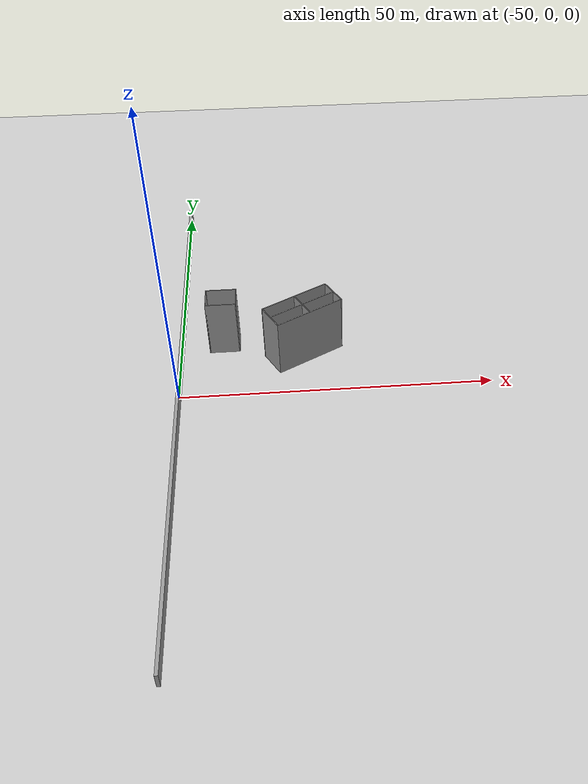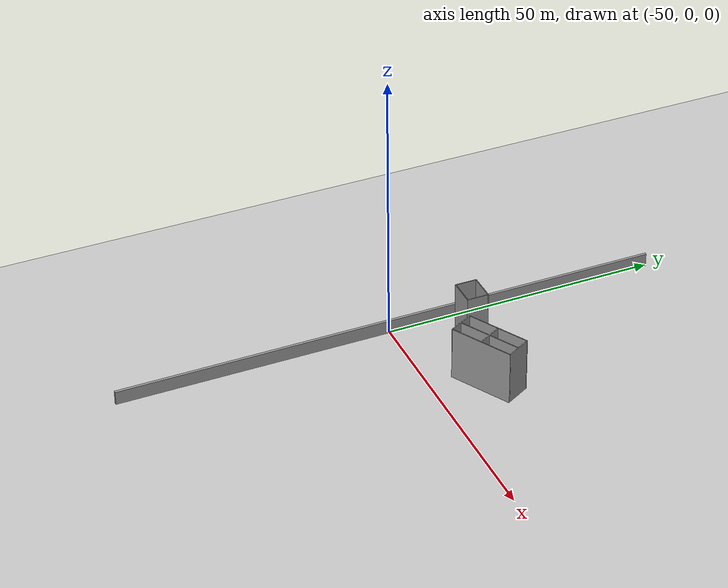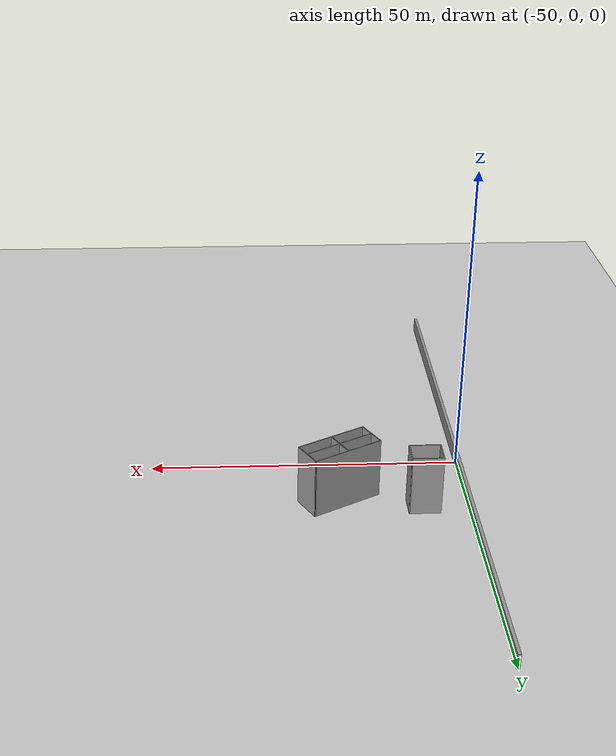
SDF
<sdf version="1.7">
 <world name="default">
  <model name="ground_plane">
   <static>1</static>
   <link name="link">
    <collision name="collision">
     <geometry><plane><normal>0 0 1</normal><size>100 100</size></plane></geometry>
     <surface><friction><ode><mu>100</mu><mu2>50</mu2></ode></friction></surface>
    </collision>
    <visual name="visual">
     <cast_shadows>0</cast_shadows>
     <geometry><plane><normal>0 0 1</normal><size>100 100</size></plane></geometry>
     <material>
      <script><uri>file://media/materials/scripts/gazebo.material</uri><name>Gazebo/Grey</name></script>
     </material>
    </visual>
   </link>
  </model>
  <model name="building1_clone_0_clone_5">
   <link name="Wall_12">
    <pose>-1.19 -3.2645 0 0 -0 0</pose>
    <inertial>
     <mass>1</mass>
     <inertia><ixx>1</ixx><ixy>0</ixy><ixz>0</ixz><iyy>1</iyy><iyz>0</iyz><izz>1</izz></inertia>
    </inertial>
    <visual name="Wall_12_Visual">
     <pose>0 0 5 0 -0 0</pose>
     <geometry><box><size>5 0.15 10</size></box></geometry>
     <material>
      <script><uri>file://media/materials/scripts/gazebo.material</uri><name>Gazebo/Grey</name></script>
      <ambient>0.5 0.5 0.5 1</ambient>
      <shader type="pixel"><normal_map>__default__</normal_map></shader>
      <diffuse>0.5 0.5 0.5 1</diffuse>
      <specular>0.5 0.5 0.5 1</specular>
      <emissive>0 0 0 1</emissive>
     </material>
     <meta><layer>0</layer></meta>
    </visual>
    <collision name="Wall_12_Collision">
     <pose>0 0 5 0 -0 0</pose>
     <geometry><box><size>5 0.15 10</size></box></geometry>
     <surface>
      <friction>
       <ode><mu>1</mu><mu2>1</mu2><fdir1>0 0 0</fdir1><slip1>0</slip1><slip2>0</slip2></ode>
       <torsional>
        <coefficient>1</coefficient>
        <patch_radius>0</patch_radius>
        <surface_radius>0</surface_radius>
        <use_patch_radius>1</use_patch_radius>
        <ode><slip>0</slip></ode>
       </torsional>
      </friction>
      <bounce><restitution_coefficient>0</restitution_coefficient><threshold>1e+06</threshold></bounce>
      <contact>
       <collide_without_contact>0</collide_without_contact>
       <collide_without_contact_bitmask>1</collide_without_contact_bitmask>
       <collide_bitmask>1</collide_bitmask>
       <ode>
        <soft_cfm>0</soft_cfm>
        <soft_erp>0.2</soft_erp>
        <kp>1e+13</kp>
        <kd>1</kd>
        <max_vel>0.01</max_vel>
        <min_depth>0</min_depth>
       </ode>
       <bullet>
        <split_impulse>1</split_impulse>
        <split_impulse_penetration_threshold>-0.01</split_impulse_penetration_threshold>
        <soft_cfm>0</soft_cfm>
        <soft_erp>0.2</soft_erp>
        <kp>1e+13</kp>
        <kd>1</kd>
       </bullet>
      </contact>
     </surface>
    </collision>
   </link>
   <link name="Wall_13">
    <pose>1.235 -1.3395 0 0 -0 1.5708</pose>
    <inertial>
     <mass>1</mass>
     <inertia><ixx>1</ixx><ixy>0</ixy><ixz>0</ixz><iyy>1</iyy><iyz>0</iyz><izz>1</izz></inertia>
    </inertial>
    <visual name="Wall_13_Visual">
     <pose>0 0 5 0 -0 0</pose>
     <geometry><box><size>4 0.15 10</size></box></geometry>
     <material>
      <script><uri>file://media/materials/scripts/gazebo.material</uri><name>Gazebo/Grey</name></script>
      <ambient>0.5 0.5 0.5 1</ambient>
      <shader type="pixel"><normal_map>__default__</normal_map></shader>
      <diffuse>0.5 0.5 0.5 1</diffuse>
      <specular>0.5 0.5 0.5 1</specular>
      <emissive>0 0 0 1</emissive>
     </material>
     <meta><layer>0</layer></meta>
    </visual>
    <collision name="Wall_13_Collision">
     <pose>0 0 5 0 -0 0</pose>
     <geometry><box><size>4 0.15 10</size></box></geometry>
     <surface>
      <friction>
       <ode><mu>1</mu><mu2>1</mu2><fdir1>0 0 0</fdir1><slip1>0</slip1><slip2>0</slip2></ode>
       <torsional>
        <coefficient>1</coefficient>
        <patch_radius>0</patch_radius>
        <surface_radius>0</surface_radius>
        <use_patch_radius>1</use_patch_radius>
        <ode><slip>0</slip></ode>
       </torsional>
      </friction>
      <bounce><restitution_coefficient>0</restitution_coefficient><threshold>1e+06</threshold></bounce>
      <contact>
       <collide_without_contact>0</collide_without_contact>
       <collide_without_contact_bitmask>1</collide_without_contact_bitmask>
       <collide_bitmask>1</collide_bitmask>
       <ode>
        <soft_cfm>0</soft_cfm>
        <soft_erp>0.2</soft_erp>
        <kp>1e+13</kp>
        <kd>1</kd>
        <max_vel>0.01</max_vel>
        <min_depth>0</min_depth>
       </ode>
       <bullet>
        <split_impulse>1</split_impulse>
        <split_impulse_penetration_threshold>-0.01</split_impulse_penetration_threshold>
        <soft_cfm>0</soft_cfm>
        <soft_erp>0.2</soft_erp>
        <kp>1e+13</kp>
        <kd>1</kd>
       </bullet>
      </contact>
     </surface>
    </collision>
   </link>
   <link name="Wall_15">
    <pose>-1.19 0.5855 0 0 -0 3.14159</pose>
    <inertial>
     <mass>1</mass>
     <inertia><ixx>1</ixx><ixy>0</ixy><ixz>0</ixz><iyy>1</iyy><iyz>0</iyz><izz>1</izz></inertia>
    </inertial>
    <visual name="Wall_15_Visual">
     <pose>0 0 5 0 -0 0</pose>
     <geometry><box><size>5 0.15 10</size></box></geometry>
     <material>
      <script><uri>file://media/materials/scripts/gazebo.material</uri><name>Gazebo/Grey</name></script>
      <ambient>0.5 0.5 0.5 1</ambient>
      <shader type="pixel"><normal_map>__default__</normal_map></shader>
      <diffuse>0.5 0.5 0.5 1</diffuse>
      <specular>0.5 0.5 0.5 1</specular>
      <emissive>0 0 0 1</emissive>
     </material>
     <meta><layer>0</layer></meta>
    </visual>
    <collision name="Wall_15_Collision">
     <pose>0 0 5 0 -0 0</pose>
     <geometry><box><size>5 0.15 10</size></box></geometry>
     <surface>
      <friction>
       <ode><mu>1</mu><mu2>1</mu2><fdir1>0 0 0</fdir1><slip1>0</slip1><slip2>0</slip2></ode>
       <torsional>
        <coefficient>1</coefficient>
        <patch_radius>0</patch_radius>
        <surface_radius>0</surface_radius>
        <use_patch_radius>1</use_patch_radius>
        <ode><slip>0</slip></ode>
       </torsional>
      </friction>
      <bounce><restitution_coefficient>0</restitution_coefficient><threshold>1e+06</threshold></bounce>
      <contact>
       <collide_without_contact>0</collide_without_contact>
       <collide_without_contact_bitmask>1</collide_without_contact_bitmask>
       <collide_bitmask>1</collide_bitmask>
       <ode>
        <soft_cfm>0</soft_cfm>
        <soft_erp>0.2</soft_erp>
        <kp>1e+13</kp>
        <kd>1</kd>
        <max_vel>0.01</max_vel>
        <min_depth>0</min_depth>
       </ode>
       <bullet>
        <split_impulse>1</split_impulse>
        <split_impulse_penetration_threshold>-0.01</split_impulse_penetration_threshold>
        <soft_cfm>0</soft_cfm>
        <soft_erp>0.2</soft_erp>
        <kp>1e+13</kp>
        <kd>1</kd>
       </bullet>
      </contact>
     </surface>
    </collision>
   </link>
   <link name="Wall_16">
    <pose>-3.615 -1.3395 0 0 0 -1.5708</pose>
    <inertial>
     <mass>1</mass>
     <inertia><ixx>1</ixx><ixy>0</ixy><ixz>0</ixz><iyy>1</iyy><iyz>0</iyz><izz>1</izz></inertia>
    </inertial>
    <visual name="Wall_16_Visual">
     <pose>0 0 5 0 -0 0</pose>
     <geometry><box><size>4 0.15 10</size></box></geometry>
     <material>
      <script><uri>file://media/materials/scripts/gazebo.material</uri><name>Gazebo/Grey</name></script>
      <ambient>0.5 0.5 0.5 1</ambient>
      <shader type="pixel"><normal_map>__default__</normal_map></shader>
      <diffuse>0.5 0.5 0.5 1</diffuse>
      <specular>0.5 0.5 0.5 1</specular>
      <emissive>0 0 0 1</emissive>
     </material>
     <meta><layer>0</layer></meta>
    </visual>
    <collision name="Wall_16_Collision">
     <pose>0 0 5 0 -0 0</pose>
     <geometry><box><size>4 0.15 10</size></box></geometry>
     <surface>
      <friction>
       <ode><mu>1</mu><mu2>1</mu2><fdir1>0 0 0</fdir1><slip1>0</slip1><slip2>0</slip2></ode>
       <torsional>
        <coefficient>1</coefficient>
        <patch_radius>0</patch_radius>
        <surface_radius>0</surface_radius>
        <use_patch_radius>1</use_patch_radius>
        <ode><slip>0</slip></ode>
       </torsional>
      </friction>
      <bounce><restitution_coefficient>0</restitution_coefficient><threshold>1e+06</threshold></bounce>
      <contact>
       <collide_without_contact>0</collide_without_contact>
       <collide_without_contact_bitmask>1</collide_without_contact_bitmask>
       <collide_bitmask>1</collide_bitmask>
       <ode>
        <soft_cfm>0</soft_cfm>
        <soft_erp>0.2</soft_erp>
        <kp>1e+13</kp>
        <kd>1</kd>
        <max_vel>0.01</max_vel>
        <min_depth>0</min_depth>
       </ode>
       <bullet>
        <split_impulse>1</split_impulse>
        <split_impulse_penetration_threshold>-0.01</split_impulse_penetration_threshold>
        <soft_cfm>0</soft_cfm>
        <soft_erp>0.2</soft_erp>
        <kp>1e+13</kp>
        <kd>1</kd>
       </bullet>
      </contact>
     </surface>
    </collision>
   </link>
   <static>1</static>
   <pose>-41.7127 13.7218 0 0 -0 0</pose>
  </model>
  <model name="building5_clone_clone">
   <link name="Wall_64">
    <pose>-1e-06 -4.8275 0 0 -0 0</pose>
    <inertial>
     <mass>1</mass>
     <inertia><ixx>1</ixx><ixy>0</ixy><ixz>0</ixz><iyy>1</iyy><iyz>0</iyz><izz>1</izz></inertia>
    </inertial>
    <visual name="Wall_64_Visual">
     <pose>0 0 5 0 -0 0</pose>
     <geometry><box><size>12 0.15 10</size></box></geometry>
     <material>
      <script><uri>file://media/materials/scripts/gazebo.material</uri><name>Gazebo/Grey</name></script>
      <ambient>0.5 0.5 0.5 1</ambient>
      <shader type="pixel"><normal_map>__default__</normal_map></shader>
      <diffuse>0.5 0.5 0.5 1</diffuse>
      <specular>0.5 0.5 0.5 1</specular>
      <emissive>0 0 0 1</emissive>
     </material>
     <meta><layer>0</layer></meta>
    </visual>
    <collision name="Wall_64_Collision">
     <pose>0 0 5 0 -0 0</pose>
     <geometry><box><size>12 0.15 10</size></box></geometry>
     <surface>
      <friction>
       <ode><mu>1</mu><mu2>1</mu2><fdir1>0 0 0</fdir1><slip1>0</slip1><slip2>0</slip2></ode>
       <torsional>
        <coefficient>1</coefficient>
        <patch_radius>0</patch_radius>
        <surface_radius>0</surface_radius>
        <use_patch_radius>1</use_patch_radius>
        <ode><slip>0</slip></ode>
       </torsional>
      </friction>
      <bounce><restitution_coefficient>0</restitution_coefficient><threshold>1e+06</threshold></bounce>
      <contact>
       <collide_without_contact>0</collide_without_contact>
       <collide_without_contact_bitmask>1</collide_without_contact_bitmask>
       <collide_bitmask>1</collide_bitmask>
       <ode>
        <soft_cfm>0</soft_cfm>
        <soft_erp>0.2</soft_erp>
        <kp>1e+13</kp>
        <kd>1</kd>
        <max_vel>0.01</max_vel>
        <min_depth>0</min_depth>
       </ode>
       <bullet>
        <split_impulse>1</split_impulse>
        <split_impulse_penetration_threshold>-0.01</split_impulse_penetration_threshold>
        <soft_cfm>0</soft_cfm>
        <soft_erp>0.2</soft_erp>
        <kp>1e+13</kp>
        <kd>1</kd>
       </bullet>
      </contact>
     </surface>
    </collision>
   </link>
   <link name="Wall_65">
    <pose>5.925 -2.4025 0 0 -0 1.5708</pose>
    <inertial>
     <mass>1</mass>
     <inertia><ixx>1</ixx><ixy>0</ixy><ixz>0</ixz><iyy>1</iyy><iyz>0</iyz><izz>1</izz></inertia>
    </inertial>
    <visual name="Wall_65_Visual">
     <pose>0 0 5 0 -0 0</pose>
     <geometry><box><size>5 0.15 10</size></box></geometry>
     <material>
      <script><uri>file://media/materials/scripts/gazebo.material</uri><name>Gazebo/Grey</name></script>
      <ambient>0.5 0.5 0.5 1</ambient>
      <shader type="pixel"><normal_map>__default__</normal_map></shader>
      <diffuse>0.5 0.5 0.5 1</diffuse>
      <specular>0.5 0.5 0.5 1</specular>
      <emissive>0 0 0 1</emissive>
     </material>
     <meta><layer>0</layer></meta>
    </visual>
    <collision name="Wall_65_Collision">
     <pose>0 0 5 0 -0 0</pose>
     <geometry><box><size>5 0.15 10</size></box></geometry>
     <surface>
      <friction>
       <ode><mu>1</mu><mu2>1</mu2><fdir1>0 0 0</fdir1><slip1>0</slip1><slip2>0</slip2></ode>
       <torsional>
        <coefficient>1</coefficient>
        <patch_radius>0</patch_radius>
        <surface_radius>0</surface_radius>
        <use_patch_radius>1</use_patch_radius>
        <ode><slip>0</slip></ode>
       </torsional>
      </friction>
      <bounce><restitution_coefficient>0</restitution_coefficient><threshold>1e+06</threshold></bounce>
      <contact>
       <collide_without_contact>0</collide_without_contact>
       <collide_without_contact_bitmask>1</collide_without_contact_bitmask>
       <collide_bitmask>1</collide_bitmask>
       <ode>
        <soft_cfm>0</soft_cfm>
        <soft_erp>0.2</soft_erp>
        <kp>1e+13</kp>
        <kd>1</kd>
        <max_vel>0.01</max_vel>
        <min_depth>0</min_depth>
       </ode>
       <bullet>
        <split_impulse>1</split_impulse>
        <split_impulse_penetration_threshold>-0.01</split_impulse_penetration_threshold>
        <soft_cfm>0</soft_cfm>
        <soft_erp>0.2</soft_erp>
        <kp>1e+13</kp>
        <kd>1</kd>
       </bullet>
      </contact>
     </surface>
    </collision>
   </link>
   <link name="Wall_66">
    <pose>0 0.0225 0 0 -0 3.14159</pose>
    <inertial>
     <mass>1</mass>
     <inertia><ixx>1</ixx><ixy>0</ixy><ixz>0</ixz><iyy>1</iyy><iyz>0</iyz><izz>1</izz></inertia>
    </inertial>
    <visual name="Wall_66_Visual">
     <pose>0 0 5 0 -0 0</pose>
     <geometry><box><size>12 0.15 10</size></box></geometry>
     <material>
      <script><uri>file://media/materials/scripts/gazebo.material</uri><name>Gazebo/Grey</name></script>
      <ambient>0.5 0.5 0.5 1</ambient>
      <shader type="pixel"><normal_map>__default__</normal_map></shader>
      <diffuse>0.5 0.5 0.5 1</diffuse>
      <specular>0.5 0.5 0.5 1</specular>
      <emissive>0 0 0 1</emissive>
     </material>
     <meta><layer>0</layer></meta>
    </visual>
    <collision name="Wall_66_Collision">
     <pose>0 0 5 0 -0 0</pose>
     <geometry><box><size>12 0.15 10</size></box></geometry>
     <surface>
      <friction>
       <ode><mu>1</mu><mu2>1</mu2><fdir1>0 0 0</fdir1><slip1>0</slip1><slip2>0</slip2></ode>
       <torsional>
        <coefficient>1</coefficient>
        <patch_radius>0</patch_radius>
        <surface_radius>0</surface_radius>
        <use_patch_radius>1</use_patch_radius>
        <ode><slip>0</slip></ode>
       </torsional>
      </friction>
      <bounce><restitution_coefficient>0</restitution_coefficient><threshold>1e+06</threshold></bounce>
      <contact>
       <collide_without_contact>0</collide_without_contact>
       <collide_without_contact_bitmask>1</collide_without_contact_bitmask>
       <collide_bitmask>1</collide_bitmask>
       <ode>
        <soft_cfm>0</soft_cfm>
        <soft_erp>0.2</soft_erp>
        <kp>1e+13</kp>
        <kd>1</kd>
        <max_vel>0.01</max_vel>
        <min_depth>0</min_depth>
       </ode>
       <bullet>
        <split_impulse>1</split_impulse>
        <split_impulse_penetration_threshold>-0.01</split_impulse_penetration_threshold>
        <soft_cfm>0</soft_cfm>
        <soft_erp>0.2</soft_erp>
        <kp>1e+13</kp>
        <kd>1</kd>
       </bullet>
      </contact>
     </surface>
    </collision>
   </link>
   <link name="Wall_67">
    <pose>-5.925 -2.4025 0 0 0 -1.5708</pose>
    <inertial>
     <mass>1</mass>
     <inertia><ixx>1</ixx><ixy>0</ixy><ixz>0</ixz><iyy>1</iyy><iyz>0</iyz><izz>1</izz></inertia>
    </inertial>
    <visual name="Wall_67_Visual">
     <pose>0 0 5 0 -0 0</pose>
     <geometry><box><size>5 0.15 10</size></box></geometry>
     <material>
      <script><uri>file://media/materials/scripts/gazebo.material</uri><name>Gazebo/Grey</name></script>
      <ambient>0.5 0.5 0.5 1</ambient>
      <shader type="pixel"><normal_map>__default__</normal_map></shader>
      <diffuse>0.5 0.5 0.5 1</diffuse>
      <specular>0.5 0.5 0.5 1</specular>
      <emissive>0 0 0 1</emissive>
     </material>
     <meta><layer>0</layer></meta>
    </visual>
    <collision name="Wall_67_Collision">
     <pose>0 0 5 0 -0 0</pose>
     <geometry><box><size>5 0.15 10</size></box></geometry>
     <surface>
      <friction>
       <ode><mu>1</mu><mu2>1</mu2><fdir1>0 0 0</fdir1><slip1>0</slip1><slip2>0</slip2></ode>
       <torsional>
        <coefficient>1</coefficient>
        <patch_radius>0</patch_radius>
        <surface_radius>0</surface_radius>
        <use_patch_radius>1</use_patch_radius>
        <ode><slip>0</slip></ode>
       </torsional>
      </friction>
      <bounce><restitution_coefficient>0</restitution_coefficient><threshold>1e+06</threshold></bounce>
      <contact>
       <collide_without_contact>0</collide_without_contact>
       <collide_without_contact_bitmask>1</collide_without_contact_bitmask>
       <collide_bitmask>1</collide_bitmask>
       <ode>
        <soft_cfm>0</soft_cfm>
        <soft_erp>0.2</soft_erp>
        <kp>1e+13</kp>
        <kd>1</kd>
        <max_vel>0.01</max_vel>
        <min_depth>0</min_depth>
       </ode>
       <bullet>
        <split_impulse>1</split_impulse>
        <split_impulse_penetration_threshold>-0.01</split_impulse_penetration_threshold>
        <soft_cfm>0</soft_cfm>
        <soft_erp>0.2</soft_erp>
        <kp>1e+13</kp>
        <kd>1</kd>
       </bullet>
      </contact>
     </surface>
    </collision>
   </link>
   <link name="Wall_69">
    <pose>0 -2.3885 0 0 0 -1.5708</pose>
    <inertial>
     <mass>1</mass>
     <inertia><ixx>1</ixx><ixy>0</ixy><ixz>0</ixz><iyy>1</iyy><iyz>0</iyz><izz>1</izz></inertia>
    </inertial>
    <visual name="Wall_69_Visual">
     <pose>0 0 5 0 -0 0</pose>
     <geometry><box><size>4.9 0.15 10</size></box></geometry>
     <material>
      <script><uri>file://media/materials/scripts/gazebo.material</uri><name>Gazebo/Grey</name></script>
      <ambient>0.5 0.5 0.5 1</ambient>
      <shader type="pixel"><normal_map>__default__</normal_map></shader>
      <diffuse>0.5 0.5 0.5 1</diffuse>
      <specular>0.5 0.5 0.5 1</specular>
      <emissive>0 0 0 1</emissive>
     </material>
     <meta><layer>0</layer></meta>
    </visual>
    <collision name="Wall_69_Collision">
     <pose>0 0 5 0 -0 0</pose>
     <geometry><box><size>4.9 0.15 10</size></box></geometry>
     <surface>
      <friction>
       <ode><mu>1</mu><mu2>1</mu2><fdir1>0 0 0</fdir1><slip1>0</slip1><slip2>0</slip2></ode>
       <torsional>
        <coefficient>1</coefficient>
        <patch_radius>0</patch_radius>
        <surface_radius>0</surface_radius>
        <use_patch_radius>1</use_patch_radius>
        <ode><slip>0</slip></ode>
       </torsional>
      </friction>
      <bounce><restitution_coefficient>0</restitution_coefficient><threshold>1e+06</threshold></bounce>
      <contact>
       <collide_without_contact>0</collide_without_contact>
       <collide_without_contact_bitmask>1</collide_without_contact_bitmask>
       <collide_bitmask>1</collide_bitmask>
       <ode>
        <soft_cfm>0</soft_cfm>
        <soft_erp>0.2</soft_erp>
        <kp>1e+13</kp>
        <kd>1</kd>
        <max_vel>0.01</max_vel>
        <min_depth>0</min_depth>
       </ode>
       <bullet>
        <split_impulse>1</split_impulse>
        <split_impulse_penetration_threshold>-0.01</split_impulse_penetration_threshold>
        <soft_cfm>0</soft_cfm>
        <soft_erp>0.2</soft_erp>
        <kp>1e+13</kp>
        <kd>1</kd>
       </bullet>
      </contact>
     </surface>
    </collision>
   </link>
   <link name="Wall_74">
    <pose>-0.024 -2.4605 0 0 -0 0</pose>
    <inertial>
     <mass>1</mass>
     <inertia><ixx>1</ixx><ixy>0</ixy><ixz>0</ixz><iyy>1</iyy><iyz>0</iyz><izz>1</izz></inertia>
    </inertial>
    <visual name="Wall_74_Visual">
     <pose>0 0 5 0 -0 0</pose>
     <geometry><box><size>11.9 0.15 10</size></box></geometry>
     <material>
      <script><uri>file://media/materials/scripts/gazebo.material</uri><name>Gazebo/Grey</name></script>
      <ambient>0.5 0.5 0.5 1</ambient>
      <shader type="pixel"><normal_map>__default__</normal_map></shader>
      <diffuse>0.5 0.5 0.5 1</diffuse>
      <specular>0.5 0.5 0.5 1</specular>
      <emissive>0 0 0 1</emissive>
     </material>
     <meta><layer>0</layer></meta>
    </visual>
    <collision name="Wall_74_Collision">
     <pose>0 0 5 0 -0 0</pose>
     <geometry><box><size>11.9 0.15 10</size></box></geometry>
     <surface>
      <friction>
       <ode><mu>1</mu><mu2>1</mu2><fdir1>0 0 0</fdir1><slip1>0</slip1><slip2>0</slip2></ode>
       <torsional>
        <coefficient>1</coefficient>
        <patch_radius>0</patch_radius>
        <surface_radius>0</surface_radius>
        <use_patch_radius>1</use_patch_radius>
        <ode><slip>0</slip></ode>
       </torsional>
      </friction>
      <bounce><restitution_coefficient>0</restitution_coefficient><threshold>1e+06</threshold></bounce>
      <contact>
       <collide_without_contact>0</collide_without_contact>
       <collide_without_contact_bitmask>1</collide_without_contact_bitmask>
       <collide_bitmask>1</collide_bitmask>
       <ode>
        <soft_cfm>0</soft_cfm>
        <soft_erp>0.2</soft_erp>
        <kp>1e+13</kp>
        <kd>1</kd>
        <max_vel>0.01</max_vel>
        <min_depth>0</min_depth>
       </ode>
       <bullet>
        <split_impulse>1</split_impulse>
        <split_impulse_penetration_threshold>-0.01</split_impulse_penetration_threshold>
        <soft_cfm>0</soft_cfm>
        <soft_erp>0.2</soft_erp>
        <kp>1e+13</kp>
        <kd>1</kd>
       </bullet>
      </contact>
     </surface>
    </collision>
   </link>
   <static>1</static>
   <pose>-31.0187 11.6874 0 0 -0 0.507347</pose>
  </model>
  <model name="100mfence_clone_clone">
   <link name="Wall_0">
    <pose>-13.0161 -13.4589 0 0 -0 1.571</pose>
    <inertial>
     <mass>1</mass>
     <inertia><ixx>1</ixx><ixy>0</ixy><ixz>0</ixz><iyy>1</iyy><iyz>0</iyz><izz>1</izz></inertia>
    </inertial>
    <visual name="Wall_0_Visual">
     <pose>0 0 1.25 0 -0 0</pose>
     <geometry><box><size>100 0.5 2.5</size></box></geometry>
     <material>
      <script><uri>file://media/materials/scripts/gazebo.material</uri><name>Gazebo/Grey</name></script>
      <ambient>0.5 0.5 0.5 1</ambient>
      <shader type="pixel"><normal_map>__default__</normal_map></shader>
      <diffuse>0.5 0.5 0.5 1</diffuse>
      <specular>0.5 0.5 0.5 1</specular>
      <emissive>0 0 0 1</emissive>
     </material>
     <meta><layer>0</layer></meta>
    </visual>
    <collision name="Wall_0_Collision">
     <pose>0 0 1.25 0 -0 0</pose>
     <geometry><box><size>100 0.15 2.5</size></box></geometry>
     <surface>
      <friction>
       <ode><mu>1</mu><mu2>1</mu2><fdir1>0 0 0</fdir1><slip1>0</slip1><slip2>0</slip2></ode>
       <torsional>
        <coefficient>1</coefficient>
        <patch_radius>0</patch_radius>
        <surface_radius>0</surface_radius>
        <use_patch_radius>1</use_patch_radius>
        <ode><slip>0</slip></ode>
       </torsional>
      </friction>
      <bounce><restitution_coefficient>0</restitution_coefficient><threshold>1e+06</threshold></bounce>
      <contact>
       <collide_without_contact>0</collide_without_contact>
       <collide_without_contact_bitmask>1</collide_without_contact_bitmask>
       <collide_bitmask>1</collide_bitmask>
       <ode>
        <soft_cfm>0</soft_cfm>
        <soft_erp>0.2</soft_erp>
        <kp>1e+13</kp>
        <kd>1</kd>
        <max_vel>0.01</max_vel>
        <min_depth>0</min_depth>
       </ode>
       <bullet>
        <split_impulse>1</split_impulse>
        <split_impulse_penetration_threshold>-0.01</split_impulse_penetration_threshold>
        <soft_cfm>0</soft_cfm>
        <soft_erp>0.2</soft_erp>
        <kp>1e+13</kp>
        <kd>1</kd>
       </bullet>
      </contact>
     </surface>
    </collision>
   </link>
   <static>1</static>
   <pose>-36.9334 13.4626 0 0 -0 0</pose>
  </model>
 </world>
</sdf>
